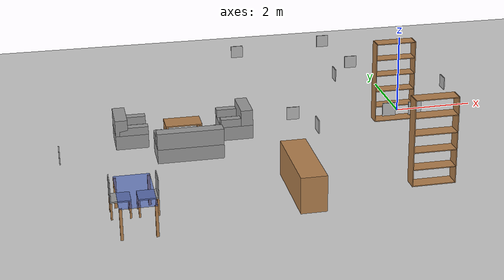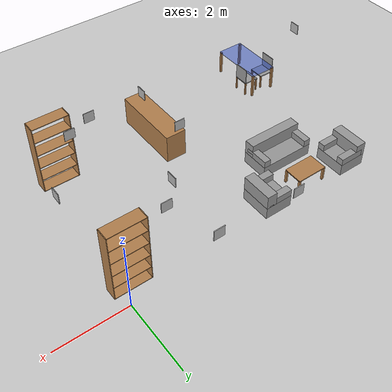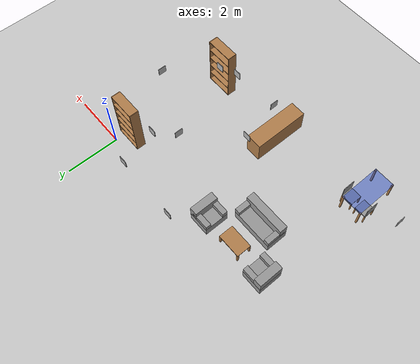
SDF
<sdf version="1.4">
 <world name="GrannyAnnie">
  <model name="ground_plane">
   <static>1</static>
   <link name="link">
    <collision name="collision">
     <geometry><plane><normal>0 0 1</normal><size>100 100</size></plane></geometry>
     <surface><friction><ode><mu>100</mu><mu2>50</mu2></ode></friction></surface>
    </collision>
    <visual name="visual">
     <cast_shadows>0</cast_shadows>
     <geometry><plane><normal>0 0 1</normal><size>100 100</size></plane></geometry>
     <material>
      <script><uri>file://media/materials/scripts/gazebo.material</uri><name>Gazebo/Grey</name></script>
     </material>
    </visual>
    <velocity_decay><linear>0</linear><angular>0</angular></velocity_decay>
   </link>
  </model>
  <model name="tag_0">
   <pose>-8.893000 -4.568000 1.500000 0.000000 0.000000 0.000000</pose>
   <static>true</static>
   <link name="link">
    <collision name="collision">
     <geometry><box><size>0.020000 0.300000 0.3000000</size></box></geometry>
    </collision>
    <visual name="visual">
     <geometry><box><size>0.020000 0.300000 0.3000000</size></box></geometry>
     <material>
      <script><uri>file://tags_material/scripts/tags.material</uri><name>Tag36_11_00000</name></script>
     </material>
    </visual>
   </link>
   <static>0</static>
  </model>
  <model name="tag_2">
   <pose>-3.304000 -4.474000 1.650000 0.000000 0.000000 0.000000</pose>
   <static>true</static>
   <link name="link">
    <collision name="collision">
     <geometry><box><size>0.020000 0.300000 0.3000000</size></box></geometry>
    </collision>
    <visual name="visual">
     <geometry><box><size>0.020000 0.300000 0.3000000</size></box></geometry>
     <material>
      <script><uri>file://tags_material/scripts/tags.material</uri><name>Tag36_11_00002</name></script>
     </material>
    </visual>
   </link>
   <static>0</static>
  </model>
  <model name="tag_3">
   <pose>-2.103000 -1.334000 1.650000 0.000000 0.000000 0.000000</pose>
   <static>true</static>
   <link name="link">
    <collision name="collision">
     <geometry><box><size>0.020000 0.300000 0.3000000</size></box></geometry>
    </collision>
    <visual name="visual">
     <geometry><box><size>0.020000 0.300000 0.3000000</size></box></geometry>
     <material>
      <script><uri>file://tags_material/scripts/tags.material</uri><name>Tag36_11_00003</name></script>
     </material>
    </visual>
   </link>
   <static>0</static>
  </model>
  <model name="tag_4">
   <pose>-4.165000 0.727000 1.700000 0.000000 0.000000 0.000000</pose>
   <static>true</static>
   <link name="link">
    <collision name="collision">
     <geometry><box><size>0.300000 0.020000 0.3000000</size></box></geometry>
    </collision>
    <visual name="visual">
     <geometry><box><size>0.300000 0.020000 0.3000000</size></box></geometry>
     <material>
      <script><uri>file://tags_material/scripts/tags.material</uri><name>Tag36_11_00004</name></script>
     </material>
    </visual>
   </link>
   <static>0</static>
  </model>
  <model name="tag_5">
   <pose>-1.512600 -0.691000 1.700000 0.000000 0.000000 0.000000</pose>
   <static>true</static>
   <link name="link">
    <collision name="collision">
     <geometry><box><size>0.300000 0.020000 0.3000000</size></box></geometry>
    </collision>
    <visual name="visual">
     <geometry><box><size>0.300000 0.020000 0.3000000</size></box></geometry>
     <material>
      <script><uri>file://tags_material/scripts/tags.material</uri><name>Tag36_11_00005</name></script>
     </material>
    </visual>
   </link>
   <static>0</static>
  </model>
  <model name="tag_6">
   <pose>-3.535000 -3.062500 1.400000 0.000000 0.000000 0.000000</pose>
   <static>true</static>
   <link name="link">
    <collision name="collision">
     <geometry><box><size>0.300000 0.020000 0.3000000</size></box></geometry>
    </collision>
    <visual name="visual">
     <geometry><box><size>0.300000 0.020000 0.3000000</size></box></geometry>
     <material>
      <script><uri>file://tags_material/scripts/tags.material</uri><name>Tag36_11_00006</name></script>
     </material>
    </visual>
   </link>
   <static>0</static>
  </model>
  <model name="tag_7">
   <pose>0.296000 -2.487000 1.650000 0.000000 0.000000 0.000000</pose>
   <static>true</static>
   <link name="link">
    <collision name="collision">
     <geometry><box><size>0.020000 0.300000 0.3000000</size></box></geometry>
    </collision>
    <visual name="visual">
     <geometry><box><size>0.020000 0.300000 0.3000000</size></box></geometry>
     <material>
      <script><uri>file://tags_material/scripts/tags.material</uri><name>Tag36_11_00007</name></script>
     </material>
    </visual>
   </link>
   <static>0</static>
  </model>
  <model name="tag_10">
   <pose>-1.614000 -4.29500 1.800000 0.000000 0.000000 0.000000</pose>
   <static>true</static>
   <link name="link">
    <collision name="collision">
     <geometry><box><size>0.300000 0.020000 0.3000000</size></box></geometry>
    </collision>
    <visual name="visual">
     <geometry><box><size>0.300000 0.020000 0.3000000</size></box></geometry>
     <material>
      <script><uri>file://tags_material/scripts/tags.material</uri><name>Tag36_11_00010</name></script>
     </material>
    </visual>
   </link>
   <static>0</static>
  </model>
  <model name="tag_11">
   <pose>-0.940000 -4.096000 1.700000 0.000000 0.000000 0.000000</pose>
   <static>true</static>
   <link name="link">
    <collision name="collision">
     <geometry><box><size>0.300000 0.020000 0.3000000</size></box></geometry>
    </collision>
    <visual name="visual">
     <geometry><box><size>0.300000 0.020000 0.3000000</size></box></geometry>
     <material>
      <script><uri>file://tags_material/scripts/tags.material</uri><name>Tag36_11_00011</name></script>
     </material>
    </visual>
   </link>
   <static>0</static>
  </model>
  <model name="tag_12">
   <pose>-1.894000 0.720000 1.830000 0.000000 0.000000 0.000000</pose>
   <static>true</static>
   <link name="link">
    <collision name="collision">
     <geometry><box><size>0.300000 0.020000 0.3000000</size></box></geometry>
    </collision>
    <visual name="visual">
     <geometry><box><size>0.300000 0.020000 0.3000000</size></box></geometry>
     <material>
      <script><uri>file://tags_material/scripts/tags.material</uri><name>Tag36_11_00012</name></script>
     </material>
    </visual>
   </link>
   <static>0</static>
  </model>
  <model name="mesa_comedor">
   <link name="mesa_link">
    <inertial>
     <pose>1.58603e-17 0 0.513571 0 -0 0</pose>
     <mass>7</mass>
     <inertia>
      <ixx>1.28229</ixx>
      <ixy>0</ixy>
      <ixz>5.70179e-17</ixz>
      <iyy>3.10629</iyy>
      <iyz>0</iyz>
      <izz>3.4192</izz>
     </inertia>
    </inertial>
    <collision name="mesa_link_collision">
     <pose>0 0 0.725 0 -0 0</pose>
     <geometry><box><size>1.6 0.8 0.03</size></box></geometry>
     <surface><friction><ode><mu>1</mu><mu2>1</mu2></ode></friction></surface>
    </collision>
    <collision name="mesa_link_collision_pata_1_link">
     <pose>0.77 0.37 0.355 0 -0 0</pose>
     <geometry><box><size>0.06 0.06 0.71</size></box></geometry>
     <surface><friction><ode><mu>1</mu><mu2>1</mu2></ode></friction></surface>
     <surface><friction><ode><mu>1</mu><mu2>1</mu2></ode></friction></surface>
    </collision>
    <collision name="mesa_link_collision_pata_2_link">
     <pose>0.77 -0.37 0.355 0 -0 0</pose>
     <geometry><box><size>0.06 0.06 0.71</size></box></geometry>
     <surface><friction><ode><mu>1</mu><mu2>1</mu2></ode></friction></surface>
     <surface><friction><ode><mu>1</mu><mu2>1</mu2></ode></friction></surface>
    </collision>
    <collision name="mesa_link_collision_pata_3_link">
     <pose>-0.77 -0.37 0.355 0 -0 0</pose>
     <geometry><box><size>0.06 0.06 0.71</size></box></geometry>
     <surface><friction><ode><mu>1</mu><mu2>1</mu2></ode></friction></surface>
     <surface><friction><ode><mu>1</mu><mu2>1</mu2></ode></friction></surface>
    </collision>
    <collision name="mesa_link_collision_pata_4_link">
     <pose>-0.77 0.37 0.355 0 -0 0</pose>
     <geometry><box><size>0.06 0.06 0.71</size></box></geometry>
     <surface><friction><ode><mu>1</mu><mu2>1</mu2></ode></friction></surface>
     <surface><friction><ode><mu>1</mu><mu2>1</mu2></ode></friction></surface>
    </collision>
    <visual name="mesa_link_visual">
     <pose>0 0 0.725 0 -0 0</pose>
     <geometry><box><size>1.6 0.8 0.03</size></box></geometry>
     <material><script><name>Gazebo/BlueTransparent</name><uri>__default__</uri></script></material>
    </visual>
    <visual name="mesa_link_visual_pata_1_link">
     <pose>0.77 0.37 0.355 0 -0 0</pose>
     <geometry><box><size>0.06 0.06 0.71</size></box></geometry>
     <material><script><name>Gazebo/Wood</name><uri>__default__</uri></script></material>
    </visual>
    <visual name="mesa_link_visual_pata_2_link">
     <pose>0.77 -0.37 0.355 0 -0 0</pose>
     <geometry><box><size>0.06 0.06 0.71</size></box></geometry>
     <material><script><name>Gazebo/Wood</name><uri>__default__</uri></script></material>
    </visual>
    <visual name="mesa_link_visual_pata_3_link">
     <pose>-0.77 -0.37 0.355 0 -0 0</pose>
     <geometry><box><size>0.06 0.06 0.71</size></box></geometry>
     <material><script><name>Gazebo/Wood</name><uri>__default__</uri></script></material>
    </visual>
    <visual name="mesa_link_visual_pata_4_link">
     <pose>-0.77 0.37 0.355 0 -0 0</pose>
     <geometry><box><size>0.06 0.06 0.71</size></box></geometry>
     <material><script><name>Gazebo/Wood</name><uri>__default__</uri></script></material>
    </visual>
    <velocity_decay><linear>0</linear><angular>0</angular></velocity_decay>
    <velocity_decay><linear>0</linear><angular>0</angular></velocity_decay>
    <velocity_decay><linear>0</linear><angular>0</angular></velocity_decay>
    <velocity_decay><linear>0</linear><angular>0</angular></velocity_decay>
    <velocity_decay><linear>0</linear><angular>0</angular></velocity_decay>
    <self_collide>1</self_collide>
   </link>
   <pose>-7.4 -5 0 0 -0 1.57</pose>
   <static>0</static>
  </model>
  <model name="silla_2">
   <link name="silla_link">
    <inertial>
     <pose>0.0215 0 0.353 0 -0 0</pose>
     <mass>2</mass>
     <inertia>
      <ixx>0.674432</ixx>
      <ixy>0</ixy>
      <ixz>-0.012986</ixz>
      <iyy>0.682753</iyy>
      <iyz>0</iyz>
      <izz>0.675561</izz>
     </inertia>
    </inertial>
    <collision name="silla_link_collision">
     <pose>0 0 0.415 0 -0 0</pose>
     <geometry><box><size>0.45 0.45 0.03</size></box></geometry>
     <surface><friction><ode><mu>1</mu><mu2>1</mu2></ode></friction></surface>
    </collision>
    <collision name="silla_link_collision_pata_1_link">
     <pose>0.205 0.205 0.2 0 -0 0</pose>
     <geometry><box><size>0.04 0.04 0.4</size></box></geometry>
     <surface><friction><ode><mu>1</mu><mu2>1</mu2></ode></friction></surface>
     <surface><friction><ode><mu>1</mu><mu2>1</mu2></ode></friction></surface>
    </collision>
    <collision name="silla_link_collision_pata_2_link">
     <pose>0.205 -0.205 0.2 0 -0 0</pose>
     <geometry><box><size>0.04 0.04 0.4</size></box></geometry>
     <surface><friction><ode><mu>1</mu><mu2>1</mu2></ode></friction></surface>
     <surface><friction><ode><mu>1</mu><mu2>1</mu2></ode></friction></surface>
    </collision>
    <collision name="silla_link_collision_pata_3_link">
     <pose>-0.205 -0.205 0.2 0 -0 0</pose>
     <geometry><box><size>0.04 0.04 0.4</size></box></geometry>
     <surface><friction><ode><mu>1</mu><mu2>1</mu2></ode></friction></surface>
     <surface><friction><ode><mu>1</mu><mu2>1</mu2></ode></friction></surface>
    </collision>
    <collision name="silla_link_collision_pata_4_link">
     <pose>-0.205 0.205 0.2 0 -0 0</pose>
     <geometry><box><size>0.04 0.04 0.4</size></box></geometry>
     <surface><friction><ode><mu>1</mu><mu2>1</mu2></ode></friction></surface>
     <surface><friction><ode><mu>1</mu><mu2>1</mu2></ode></friction></surface>
    </collision>
    <collision name="silla_link_collision_respaldo_link">
     <pose>0.215 0 0.655 0 -0 0</pose>
     <geometry><box><size>0.02 0.45 0.45</size></box></geometry>
     <surface><friction><ode><mu>1</mu><mu2>1</mu2></ode></friction></surface>
     <surface><friction><ode><mu>1</mu><mu2>1</mu2></ode></friction></surface>
    </collision>
    <visual name="silla_link_visual">
     <pose>0 0 0.415 0 -0 0</pose>
     <geometry><box><size>0.45 0.45 0.03</size></box></geometry>
     <material><script><name>Gazebo/Grey</name><uri>__default__</uri></script></material>
    </visual>
    <visual name="silla_link_visual_pata_1_link">
     <pose>0.205 0.205 0.2 0 -0 0</pose>
     <geometry><box><size>0.04 0.04 0.4</size></box></geometry>
     <material><script><name>Gazebo/Wood</name><uri>__default__</uri></script></material>
    </visual>
    <visual name="silla_link_visual_pata_2_link">
     <pose>0.205 -0.205 0.2 0 -0 0</pose>
     <geometry><box><size>0.04 0.04 0.4</size></box></geometry>
     <material><script><name>Gazebo/Wood</name><uri>__default__</uri></script></material>
    </visual>
    <visual name="silla_link_visual_pata_3_link">
     <pose>-0.205 -0.205 0.2 0 -0 0</pose>
     <geometry><box><size>0.04 0.04 0.4</size></box></geometry>
     <material><script><name>Gazebo/Wood</name><uri>__default__</uri></script></material>
    </visual>
    <visual name="silla_link_visual_pata_4_link">
     <pose>-0.205 0.205 0.2 0 -0 0</pose>
     <geometry><box><size>0.04 0.04 0.4</size></box></geometry>
     <material><script><name>Gazebo/Wood</name><uri>__default__</uri></script></material>
    </visual>
    <visual name="silla_link_visual_respaldo_link">
     <pose>0.215 0 0.655 0 -0 0</pose>
     <geometry><box><size>0.02 0.45 0.45</size></box></geometry>
     <material><script><name>Gazebo/Grey</name><uri>__default__</uri></script></material>
    </visual>
    <velocity_decay><linear>0</linear><angular>0</angular></velocity_decay>
    <velocity_decay><linear>0</linear><angular>0</angular></velocity_decay>
    <velocity_decay><linear>0</linear><angular>0</angular></velocity_decay>
    <velocity_decay><linear>0</linear><angular>0</angular></velocity_decay>
    <velocity_decay><linear>0</linear><angular>0</angular></velocity_decay>
    <velocity_decay><linear>0</linear><angular>0</angular></velocity_decay>
    <self_collide>1</self_collide>
   </link>
   <pose>-7.1 -4.6 0 0 -0 0</pose>
   <static>0</static>
  </model>
  <model name="silla_4">
   <link name="silla_link">
    <inertial>
     <pose>0.0215 0 0.353 0 -0 0</pose>
     <mass>2</mass>
     <inertia>
      <ixx>0.674432</ixx>
      <ixy>0</ixy>
      <ixz>-0.012986</ixz>
      <iyy>0.682753</iyy>
      <iyz>0</iyz>
      <izz>0.675561</izz>
     </inertia>
    </inertial>
    <collision name="silla_link_collision">
     <pose>0 0 0.415 0 -0 0</pose>
     <geometry><box><size>0.45 0.45 0.03</size></box></geometry>
     <surface><friction><ode><mu>1</mu><mu2>1</mu2></ode></friction></surface>
    </collision>
    <collision name="silla_link_collision_pata_1_link">
     <pose>0.205 0.205 0.2 0 -0 0</pose>
     <geometry><box><size>0.04 0.04 0.4</size></box></geometry>
     <surface><friction><ode><mu>1</mu><mu2>1</mu2></ode></friction></surface>
     <surface><friction><ode><mu>1</mu><mu2>1</mu2></ode></friction></surface>
    </collision>
    <collision name="silla_link_collision_pata_2_link">
     <pose>0.205 -0.205 0.2 0 -0 0</pose>
     <geometry><box><size>0.04 0.04 0.4</size></box></geometry>
     <surface><friction><ode><mu>1</mu><mu2>1</mu2></ode></friction></surface>
     <surface><friction><ode><mu>1</mu><mu2>1</mu2></ode></friction></surface>
    </collision>
    <collision name="silla_link_collision_pata_3_link">
     <pose>-0.205 -0.205 0.2 0 -0 0</pose>
     <geometry><box><size>0.04 0.04 0.4</size></box></geometry>
     <surface><friction><ode><mu>1</mu><mu2>1</mu2></ode></friction></surface>
     <surface><friction><ode><mu>1</mu><mu2>1</mu2></ode></friction></surface>
    </collision>
    <collision name="silla_link_collision_pata_4_link">
     <pose>-0.205 0.205 0.2 0 -0 0</pose>
     <geometry><box><size>0.04 0.04 0.4</size></box></geometry>
     <surface><friction><ode><mu>1</mu><mu2>1</mu2></ode></friction></surface>
     <surface><friction><ode><mu>1</mu><mu2>1</mu2></ode></friction></surface>
    </collision>
    <collision name="silla_link_collision_respaldo_link">
     <pose>0.215 0 0.655 0 -0 0</pose>
     <geometry><box><size>0.02 0.45 0.45</size></box></geometry>
     <surface><friction><ode><mu>1</mu><mu2>1</mu2></ode></friction></surface>
     <surface><friction><ode><mu>1</mu><mu2>1</mu2></ode></friction></surface>
    </collision>
    <visual name="silla_link_visual">
     <pose>0 0 0.415 0 -0 0</pose>
     <geometry><box><size>0.45 0.45 0.03</size></box></geometry>
     <material><script><name>Gazebo/Grey</name><uri>__default__</uri></script></material>
    </visual>
    <visual name="silla_link_visual_pata_1_link">
     <pose>0.205 0.205 0.2 0 -0 0</pose>
     <geometry><box><size>0.04 0.04 0.4</size></box></geometry>
     <material><script><name>Gazebo/Wood</name><uri>__default__</uri></script></material>
    </visual>
    <visual name="silla_link_visual_pata_2_link">
     <pose>0.205 -0.205 0.2 0 -0 0</pose>
     <geometry><box><size>0.04 0.04 0.4</size></box></geometry>
     <material><script><name>Gazebo/Wood</name><uri>__default__</uri></script></material>
    </visual>
    <visual name="silla_link_visual_pata_3_link">
     <pose>-0.205 -0.205 0.2 0 -0 0</pose>
     <geometry><box><size>0.04 0.04 0.4</size></box></geometry>
     <material><script><name>Gazebo/Wood</name><uri>__default__</uri></script></material>
    </visual>
    <visual name="silla_link_visual_pata_4_link">
     <pose>-0.205 0.205 0.2 0 -0 0</pose>
     <geometry><box><size>0.04 0.04 0.4</size></box></geometry>
     <material><script><name>Gazebo/Wood</name><uri>__default__</uri></script></material>
    </visual>
    <visual name="silla_link_visual_respaldo_link">
     <pose>0.215 0 0.655 0 -0 0</pose>
     <geometry><box><size>0.02 0.45 0.45</size></box></geometry>
     <material><script><name>Gazebo/Grey</name><uri>__default__</uri></script></material>
    </visual>
    <velocity_decay><linear>0</linear><angular>0</angular></velocity_decay>
    <velocity_decay><linear>0</linear><angular>0</angular></velocity_decay>
    <velocity_decay><linear>0</linear><angular>0</angular></velocity_decay>
    <velocity_decay><linear>0</linear><angular>0</angular></velocity_decay>
    <velocity_decay><linear>0</linear><angular>0</angular></velocity_decay>
    <velocity_decay><linear>0</linear><angular>0</angular></velocity_decay>
    <self_collide>1</self_collide>
   </link>
   <pose>-7.7 -4.6 0 0 -0 3.14</pose>
   <static>0</static>
  </model>
  <model name="mesa_salon">
   <link name="mesa_link">
    <inertial>
     <pose>1.38778e-17 3.46945e-18 0.3075 0 -0 0</pose>
     <mass>4</mass>
     <inertia>
      <ixx>0.666275</ixx>
      <ixy>1.92593e-34</ixy>
      <ixz>1.70697e-17</ixz>
      <iyy>0.899025</iyy>
      <iyz>4.26742e-18</iyz>
      <izz>0.97285</izz>
     </inertia>
    </inertial>
    <collision name="mesa_link_collision">
     <pose>0 0 0.415 0 -0 0</pose>
     <geometry><box><size>0.9 0.55 0.03</size></box></geometry>
     <surface><friction><ode><mu>1</mu><mu2>1</mu2></ode></friction></surface>
    </collision>
    <collision name="mesa_link_collision_pata_1_link">
     <pose>0.42 0.245 0.2 0 -0 0</pose>
     <geometry><box><size>0.06 0.06 0.4</size></box></geometry>
     <surface><friction><ode><mu>1</mu><mu2>1</mu2></ode></friction></surface>
     <surface><friction><ode><mu>1</mu><mu2>1</mu2></ode></friction></surface>
    </collision>
    <collision name="mesa_link_collision_pata_2_link">
     <pose>0.42 -0.245 0.2 0 -0 0</pose>
     <geometry><box><size>0.06 0.06 0.4</size></box></geometry>
     <surface><friction><ode><mu>1</mu><mu2>1</mu2></ode></friction></surface>
     <surface><friction><ode><mu>1</mu><mu2>1</mu2></ode></friction></surface>
    </collision>
    <collision name="mesa_link_collision_pata_3_link">
     <pose>-0.42 -0.245 0.2 0 -0 0</pose>
     <geometry><box><size>0.06 0.06 0.4</size></box></geometry>
     <surface><friction><ode><mu>1</mu><mu2>1</mu2></ode></friction></surface>
     <surface><friction><ode><mu>1</mu><mu2>1</mu2></ode></friction></surface>
    </collision>
    <collision name="mesa_link_collision_pata_4_link">
     <pose>-0.42 0.245 0.2 0 -0 0</pose>
     <geometry><box><size>0.06 0.06 0.4</size></box></geometry>
     <surface><friction><ode><mu>1</mu><mu2>1</mu2></ode></friction></surface>
     <surface><friction><ode><mu>1</mu><mu2>1</mu2></ode></friction></surface>
    </collision>
    <visual name="mesa_link_visual">
     <pose>0 0 0.415 0 -0 0</pose>
     <geometry><box><size>0.9 0.55 0.03</size></box></geometry>
     <material><script><name>Gazebo/Wood</name><uri>__default__</uri></script></material>
    </visual>
    <visual name="mesa_link_visual_pata_1_link">
     <pose>0.42 0.245 0.2 0 -0 0</pose>
     <geometry><box><size>0.06 0.06 0.4</size></box></geometry>
     <material><script><name>Gazebo/Wood</name><uri>__default__</uri></script></material>
    </visual>
    <visual name="mesa_link_visual_pata_2_link">
     <pose>0.42 -0.245 0.2 0 -0 0</pose>
     <geometry><box><size>0.06 0.06 0.4</size></box></geometry>
     <material><script><name>Gazebo/Wood</name><uri>__default__</uri></script></material>
    </visual>
    <visual name="mesa_link_visual_pata_3_link">
     <pose>-0.42 -0.245 0.2 0 -0 0</pose>
     <geometry><box><size>0.06 0.06 0.4</size></box></geometry>
     <material><script><name>Gazebo/Wood</name><uri>__default__</uri></script></material>
    </visual>
    <visual name="mesa_link_visual_pata_4_link">
     <pose>-0.42 0.245 0.2 0 -0 0</pose>
     <geometry><box><size>0.06 0.06 0.4</size></box></geometry>
     <material><script><name>Gazebo/Wood</name><uri>__default__</uri></script></material>
    </visual>
    <velocity_decay><linear>0</linear><angular>0</angular></velocity_decay>
    <velocity_decay><linear>0</linear><angular>0</angular></velocity_decay>
    <velocity_decay><linear>0</linear><angular>0</angular></velocity_decay>
    <velocity_decay><linear>0</linear><angular>0</angular></velocity_decay>
    <velocity_decay><linear>0</linear><angular>0</angular></velocity_decay>
    <self_collide>1</self_collide>
   </link>
   <pose>-5.8 -0.6 0 0 -0 0</pose>
   <static>0</static>
  </model>
  <model name="sofa_x2_salon">
   <link name="sofa_link">
    <inertial>
     <pose>0 0.0115385 0.257692 0 -0 0</pose>
     <mass>13</mass>
     <inertia>
      <ixx>0.7625</ixx>
      <ixy>0</ixy>
      <ixz>0</ixz>
      <iyy>1.67673</iyy>
      <iyz>-0.0463462</iyz>
      <izz>1.44577</izz>
     </inertia>
    </inertial>
    <collision name="sofa_link_collision">
     <pose>0 0 0.175 0 -0 0</pose>
     <geometry><box><size>1.6 0.8 0.35</size></box></geometry>
     <surface><friction><ode><mu>1</mu><mu2>1</mu2></ode></friction></surface>
    </collision>
    <collision name="sofa_link_collision_brazo_1_link">
     <pose>0.7 -0.05 0.45 0 -0 0</pose>
     <geometry><box><size>0.2 0.7 0.2</size></box></geometry>
     <surface><friction><ode><mu>1</mu><mu2>1</mu2></ode></friction></surface>
     <surface><friction><ode><mu>1</mu><mu2>1</mu2></ode></friction></surface>
    </collision>
    <collision name="sofa_link_collision_brazo_2_link">
     <pose>-0.7 -0.05 0.45 0 -0 0</pose>
     <geometry><box><size>0.2 0.7 0.2</size></box></geometry>
     <surface><friction><ode><mu>1</mu><mu2>1</mu2></ode></friction></surface>
     <surface><friction><ode><mu>1</mu><mu2>1</mu2></ode></friction></surface>
    </collision>
    <collision name="sofa_link_collision_respaldo_link">
     <pose>0 0.25 0.55 0 -0 0</pose>
     <geometry><box><size>1.6 0.3 0.4</size></box></geometry>
     <surface><friction><ode><mu>1</mu><mu2>1</mu2></ode></friction></surface>
     <surface><friction><ode><mu>1</mu><mu2>1</mu2></ode></friction></surface>
    </collision>
    <visual name="sofa_link_visual">
     <pose>0 0 0.175 0 -0 0</pose>
     <geometry><box><size>1.6 0.8 0.35</size></box></geometry>
     <material><script><name>Gazebo/Grey</name><uri>__default__</uri></script></material>
    </visual>
    <visual name="sofa_link_visual_brazo_1_link">
     <pose>0.7 -0.05 0.45 0 -0 0</pose>
     <geometry><box><size>0.2 0.7 0.2</size></box></geometry>
     <material><script><name>Gazebo/Grey</name><uri>__default__</uri></script></material>
    </visual>
    <visual name="sofa_link_visual_brazo_2_link">
     <pose>-0.7 -0.05 0.45 0 -0 0</pose>
     <geometry><box><size>0.2 0.7 0.2</size></box></geometry>
     <material><script><name>Gazebo/Grey</name><uri>__default__</uri></script></material>
    </visual>
    <visual name="sofa_link_visual_respaldo_link">
     <pose>0 0.25 0.55 0 -0 0</pose>
     <geometry><box><size>1.6 0.3 0.4</size></box></geometry>
     <material><script><name>Gazebo/Grey</name><uri>__default__</uri></script></material>
    </visual>
    <velocity_decay><linear>0</linear><angular>0</angular></velocity_decay>
    <velocity_decay><linear>0</linear><angular>0</angular></velocity_decay>
    <velocity_decay><linear>0</linear><angular>0</angular></velocity_decay>
    <velocity_decay><linear>0</linear><angular>0</angular></velocity_decay>
    <self_collide>1</self_collide>
   </link>
   <pose>-5.8 -1.7 0 0 -0 3.14</pose>
   <static>0</static>
  </model>
  <model name="sofa_x1_1_salon">
   <link name="sofa_link">
    <inertial>
     <pose>0 0.01875 0.309375 0 -0 0</pose>
     <mass>8</mass>
     <inertia>
      <ixx>0.705859</ixx>
      <ixy>0</ixy>
      <ixz>0</ixz>
      <iyy>0.886172</iyy>
      <iyz>-0.0385938</iyz>
      <izz>0.709687</izz>
     </inertia>
    </inertial>
    <collision name="sofa_link_collision">
     <pose>0 0 0.175 0 -0 0</pose>
     <geometry><box><size>0.9 0.8 0.35</size></box></geometry>
     <surface><friction><ode><mu>1</mu><mu2>1</mu2></ode></friction></surface>
    </collision>
    <collision name="sofa_link_collision_brazo_1_link">
     <pose>0.35 -0.05 0.45 0 -0 0</pose>
     <geometry><box><size>0.2 0.7 0.2</size></box></geometry>
     <surface><friction><ode><mu>1</mu><mu2>1</mu2></ode></friction></surface>
     <surface><friction><ode><mu>1</mu><mu2>1</mu2></ode></friction></surface>
    </collision>
    <collision name="sofa_link_collision_brazo_2_link">
     <pose>-0.35 -0.05 0.45 0 -0 0</pose>
     <geometry><box><size>0.2 0.7 0.2</size></box></geometry>
     <surface><friction><ode><mu>1</mu><mu2>1</mu2></ode></friction></surface>
     <surface><friction><ode><mu>1</mu><mu2>1</mu2></ode></friction></surface>
    </collision>
    <collision name="sofa_link_collision_respaldo_link">
     <pose>0 0.25 0.55 0 -0 0</pose>
     <geometry><box><size>0.9 0.3 0.4</size></box></geometry>
     <surface><friction><ode><mu>1</mu><mu2>1</mu2></ode></friction></surface>
     <surface><friction><ode><mu>1</mu><mu2>1</mu2></ode></friction></surface>
    </collision>
    <visual name="sofa_link_visual">
     <pose>0 0 0.175 0 -0 0</pose>
     <geometry><box><size>0.9 0.8 0.35</size></box></geometry>
     <material><script><name>Gazebo/Grey</name><uri>__default__</uri></script></material>
    </visual>
    <visual name="sofa_link_visual_brazo_1_link">
     <pose>0.35 -0.05 0.45 0 -0 0</pose>
     <geometry><box><size>0.2 0.7 0.2</size></box></geometry>
     <material><script><name>Gazebo/Grey</name><uri>__default__</uri></script></material>
    </visual>
    <visual name="sofa_link_visual_brazo_2_link">
     <pose>-0.35 -0.05 0.45 0 -0 0</pose>
     <geometry><box><size>0.2 0.7 0.2</size></box></geometry>
     <material><script><name>Gazebo/Grey</name><uri>__default__</uri></script></material>
    </visual>
    <visual name="sofa_link_visual_respaldo_link">
     <pose>0 0.25 0.55 0 -0 0</pose>
     <geometry><box><size>0.9 0.3 0.4</size></box></geometry>
     <material><script><name>Gazebo/Grey</name><uri>__default__</uri></script></material>
    </visual>
    <velocity_decay><linear>0</linear><angular>0</angular></velocity_decay>
    <velocity_decay><linear>0</linear><angular>0</angular></velocity_decay>
    <velocity_decay><linear>0</linear><angular>0</angular></velocity_decay>
    <velocity_decay><linear>0</linear><angular>0</angular></velocity_decay>
    <self_collide>1</self_collide>
   </link>
   <pose>-4.5 -0.6 0 0 0 -1.57</pose>
   <static>0</static>
  </model>
  <model name="sofa_x1_2_salon">
   <link name="sofa_link">
    <inertial>
     <pose>0 0.01875 0.309375 0 -0 0</pose>
     <mass>8</mass>
     <inertia>
      <ixx>0.705859</ixx>
      <ixy>0</ixy>
      <ixz>0</ixz>
      <iyy>0.886172</iyy>
      <iyz>-0.0385938</iyz>
      <izz>0.709687</izz>
     </inertia>
    </inertial>
    <collision name="sofa_link_collision">
     <pose>0 0 0.175 0 -0 0</pose>
     <geometry><box><size>0.9 0.8 0.35</size></box></geometry>
     <surface><friction><ode><mu>1</mu><mu2>1</mu2></ode></friction></surface>
    </collision>
    <collision name="sofa_link_collision_brazo_1_link">
     <pose>0.35 -0.05 0.45 0 -0 0</pose>
     <geometry><box><size>0.2 0.7 0.2</size></box></geometry>
     <surface><friction><ode><mu>1</mu><mu2>1</mu2></ode></friction></surface>
     <surface><friction><ode><mu>1</mu><mu2>1</mu2></ode></friction></surface>
    </collision>
    <collision name="sofa_link_collision_brazo_2_link">
     <pose>-0.35 -0.05 0.45 0 -0 0</pose>
     <geometry><box><size>0.2 0.7 0.2</size></box></geometry>
     <surface><friction><ode><mu>1</mu><mu2>1</mu2></ode></friction></surface>
     <surface><friction><ode><mu>1</mu><mu2>1</mu2></ode></friction></surface>
    </collision>
    <collision name="sofa_link_collision_respaldo_link">
     <pose>0 0.25 0.55 0 -0 0</pose>
     <geometry><box><size>0.9 0.3 0.4</size></box></geometry>
     <surface><friction><ode><mu>1</mu><mu2>1</mu2></ode></friction></surface>
     <surface><friction><ode><mu>1</mu><mu2>1</mu2></ode></friction></surface>
    </collision>
    <visual name="sofa_link_visual">
     <pose>0 0 0.175 0 -0 0</pose>
     <geometry><box><size>0.9 0.8 0.35</size></box></geometry>
     <material><script><name>Gazebo/Grey</name><uri>__default__</uri></script></material>
    </visual>
    <visual name="sofa_link_visual_brazo_1_link">
     <pose>0.35 -0.05 0.45 0 -0 0</pose>
     <geometry><box><size>0.2 0.7 0.2</size></box></geometry>
     <material><script><name>Gazebo/Grey</name><uri>__default__</uri></script></material>
    </visual>
    <visual name="sofa_link_visual_brazo_2_link">
     <pose>-0.35 -0.05 0.45 0 -0 0</pose>
     <geometry><box><size>0.2 0.7 0.2</size></box></geometry>
     <material><script><name>Gazebo/Grey</name><uri>__default__</uri></script></material>
    </visual>
    <visual name="sofa_link_visual_respaldo_link">
     <pose>0 0.25 0.55 0 -0 0</pose>
     <geometry><box><size>0.9 0.3 0.4</size></box></geometry>
     <material><script><name>Gazebo/Grey</name><uri>__default__</uri></script></material>
    </visual>
    <velocity_decay><linear>0</linear><angular>0</angular></velocity_decay>
    <velocity_decay><linear>0</linear><angular>0</angular></velocity_decay>
    <velocity_decay><linear>0</linear><angular>0</angular></velocity_decay>
    <velocity_decay><linear>0</linear><angular>0</angular></velocity_decay>
    <self_collide>1</self_collide>
   </link>
   <pose>-7.1 -0.6 0 0 -0 1.57</pose>
   <static>0</static>
  </model>
  <model name="encimera">
   <link name="encimera_link">
    <inertial>
     <pose>0 0 0.425 0 -0 0</pose>
     <mass>50</mass>
     <inertia><ixx>5</ixx><ixy>0</ixy><ixz>0</ixz><iyy>5</iyy><iyz>0</iyz><izz>5</izz></inertia>
    </inertial>
    <collision name="encimera_link_collision">
     <pose>0 0 0.425 0 -0 0</pose>
     <geometry><box><size>2.1 0.6 0.85</size></box></geometry>
     <surface><friction><ode><mu>1</mu><mu2>1</mu2></ode></friction></surface>
    </collision>
    <visual name="encimera_link_visual">
     <pose>0 0 0.425 0 -0 0</pose>
     <geometry><box><size>2.1 0.6 0.85</size></box></geometry>
     <material><script><name>Gazebo/Wood</name><uri>__default__</uri></script></material>
    </visual>
    <velocity_decay><linear>0</linear><angular>0</angular></velocity_decay>
    <self_collide>1</self_collide>
   </link>
   <pose>-3.6 -4.39 0 0 -0 1.57</pose>
   <static>0</static>
  </model>
  <model name="estanteria_1">
   <link name="estanteria_link">
    <inertial>
     <pose>0 0 1.046 0 -0 0</pose>
     <mass>10</mass>
     <inertia><ixx>3.12544</ixx><ixy>0</ixy><ixz>0</ixz><iyy>4.16584</iyy><iyz>0</iyz><izz>1.1204</izz></inertia>
    </inertial>
    <collision name="estanteria_link_collision">
     <pose>0 0 0.01 0 -0 0</pose>
     <geometry><box><size>1 0.35 0.02</size></box></geometry>
     <surface><friction><ode><mu>1</mu><mu2>1</mu2></ode></friction></surface>
    </collision>
    <collision name="estanteria_link_collision_basal_1_link">
     <pose>0 0 0.41 0 -0 0</pose>
     <geometry><box><size>1 0.35 0.02</size></box></geometry>
     <surface><friction><ode><mu>1</mu><mu2>1</mu2></ode></friction></surface>
     <surface><friction><ode><mu>1</mu><mu2>1</mu2></ode></friction></surface>
    </collision>
    <collision name="estanteria_link_collision_basal_2_link">
     <pose>0 0 0.83 0 -0 0</pose>
     <geometry><box><size>1 0.35 0.02</size></box></geometry>
     <surface><friction><ode><mu>1</mu><mu2>1</mu2></ode></friction></surface>
     <surface><friction><ode><mu>1</mu><mu2>1</mu2></ode></friction></surface>
    </collision>
    <collision name="estanteria_link_collision_basal_3_link">
     <pose>0 0 1.25 0 -0 0</pose>
     <geometry><box><size>1 0.35 0.02</size></box></geometry>
     <surface><friction><ode><mu>1</mu><mu2>1</mu2></ode></friction></surface>
     <surface><friction><ode><mu>1</mu><mu2>1</mu2></ode></friction></surface>
    </collision>
    <collision name="estanteria_link_collision_basal_4_link">
     <pose>0 0 1.67 0 -0 0</pose>
     <geometry><box><size>1 0.35 0.02</size></box></geometry>
     <surface><friction><ode><mu>1</mu><mu2>1</mu2></ode></friction></surface>
     <surface><friction><ode><mu>1</mu><mu2>1</mu2></ode></friction></surface>
    </collision>
    <collision name="estanteria_link_collision_basal_5_link">
     <pose>0 0 2.09 0 -0 0</pose>
     <geometry><box><size>1 0.35 0.02</size></box></geometry>
     <surface><friction><ode><mu>1</mu><mu2>1</mu2></ode></friction></surface>
     <surface><friction><ode><mu>1</mu><mu2>1</mu2></ode></friction></surface>
    </collision>
    <collision name="estanteria_link_collision_lateral_1_link">
     <pose>0.51 0 1.05 0 -0 0</pose>
     <geometry><box><size>0.02 0.35 2.1</size></box></geometry>
     <surface><friction><ode><mu>1</mu><mu2>1</mu2></ode></friction></surface>
     <surface><friction><ode><mu>1</mu><mu2>1</mu2></ode></friction></surface>
    </collision>
    <collision name="estanteria_link_collision_lateral_2_link">
     <pose>-0.51 0 1.05 0 -0 0</pose>
     <geometry><box><size>0.02 0.35 2.1</size></box></geometry>
     <surface><friction><ode><mu>1</mu><mu2>1</mu2></ode></friction></surface>
     <surface><friction><ode><mu>1</mu><mu2>1</mu2></ode></friction></surface>
    </collision>
    <visual name="estanteria_link_visual">
     <pose>0 0 0.01 0 -0 0</pose>
     <geometry><box><size>1 0.35 0.02</size></box></geometry>
     <material><script><name>Gazebo/Wood</name><uri>__default__</uri></script></material>
    </visual>
    <visual name="estanteria_link_visual_basal_1_link">
     <pose>0 0 0.41 0 -0 0</pose>
     <geometry><box><size>1 0.35 0.02</size></box></geometry>
     <material><script><name>Gazebo/Wood</name><uri>__default__</uri></script></material>
    </visual>
    <visual name="estanteria_link_visual_basal_2_link">
     <pose>0 0 0.83 0 -0 0</pose>
     <geometry><box><size>1 0.35 0.02</size></box></geometry>
     <material><script><name>Gazebo/Wood</name><uri>__default__</uri></script></material>
    </visual>
    <visual name="estanteria_link_visual_basal_3_link">
     <pose>0 0 1.25 0 -0 0</pose>
     <geometry><box><size>1 0.35 0.02</size></box></geometry>
     <material><script><name>Gazebo/Wood</name><uri>__default__</uri></script></material>
    </visual>
    <visual name="estanteria_link_visual_basal_4_link">
     <pose>0 0 1.67 0 -0 0</pose>
     <geometry><box><size>1 0.35 0.02</size></box></geometry>
     <material><script><name>Gazebo/Wood</name><uri>__default__</uri></script></material>
    </visual>
    <visual name="estanteria_link_visual_basal_5_link">
     <pose>0 0 2.09 0 -0 0</pose>
     <geometry><box><size>1 0.35 0.02</size></box></geometry>
     <material><script><name>Gazebo/Wood</name><uri>__default__</uri></script></material>
    </visual>
    <visual name="estanteria_link_visual_lateral_1_link">
     <pose>0.51 0 1.05 0 -0 0</pose>
     <geometry><box><size>0.02 0.35 2.1</size></box></geometry>
     <material><script><name>Gazebo/Wood</name><uri>__default__</uri></script></material>
    </visual>
    <visual name="estanteria_link_visual_lateral_2_link">
     <pose>-0.51 0 1.05 0 -0 0</pose>
     <geometry><box><size>0.02 0.35 2.1</size></box></geometry>
     <material><script><name>Gazebo/Wood</name><uri>__default__</uri></script></material>
    </visual>
    <velocity_decay><linear>0</linear><angular>0</angular></velocity_decay>
    <velocity_decay><linear>0</linear><angular>0</angular></velocity_decay>
    <velocity_decay><linear>0</linear><angular>0</angular></velocity_decay>
    <velocity_decay><linear>0</linear><angular>0</angular></velocity_decay>
    <velocity_decay><linear>0</linear><angular>0</angular></velocity_decay>
    <velocity_decay><linear>0</linear><angular>0</angular></velocity_decay>
    <velocity_decay><linear>0</linear><angular>0</angular></velocity_decay>
    <velocity_decay><linear>0</linear><angular>0</angular></velocity_decay>
    <self_collide>1</self_collide>
   </link>
   <pose>-0.3 -0.52 0 0 -0 0</pose>
   <static>0</static>
  </model>
  <model name="estanteria_2">
   <link name="estanteria_link">
    <inertial>
     <pose>0 0 1.046 0 -0 0</pose>
     <mass>10</mass>
     <inertia><ixx>3.12544</ixx><ixy>0</ixy><ixz>0</ixz><iyy>4.16584</iyy><iyz>0</iyz><izz>1.1204</izz></inertia>
    </inertial>
    <collision name="estanteria_link_collision">
     <pose>0 0 0.01 0 -0 0</pose>
     <geometry><box><size>1 0.35 0.02</size></box></geometry>
     <surface><friction><ode><mu>1</mu><mu2>1</mu2></ode></friction></surface>
    </collision>
    <collision name="estanteria_link_collision_basal_1_link">
     <pose>0 0 0.41 0 -0 0</pose>
     <geometry><box><size>1 0.35 0.02</size></box></geometry>
     <surface><friction><ode><mu>1</mu><mu2>1</mu2></ode></friction></surface>
     <surface><friction><ode><mu>1</mu><mu2>1</mu2></ode></friction></surface>
    </collision>
    <collision name="estanteria_link_collision_basal_2_link">
     <pose>0 0 0.83 0 -0 0</pose>
     <geometry><box><size>1 0.35 0.02</size></box></geometry>
     <surface><friction><ode><mu>1</mu><mu2>1</mu2></ode></friction></surface>
     <surface><friction><ode><mu>1</mu><mu2>1</mu2></ode></friction></surface>
    </collision>
    <collision name="estanteria_link_collision_basal_3_link">
     <pose>0 0 1.25 0 -0 0</pose>
     <geometry><box><size>1 0.35 0.02</size></box></geometry>
     <surface><friction><ode><mu>1</mu><mu2>1</mu2></ode></friction></surface>
     <surface><friction><ode><mu>1</mu><mu2>1</mu2></ode></friction></surface>
    </collision>
    <collision name="estanteria_link_collision_basal_4_link">
     <pose>0 0 1.67 0 -0 0</pose>
     <geometry><box><size>1 0.35 0.02</size></box></geometry>
     <surface><friction><ode><mu>1</mu><mu2>1</mu2></ode></friction></surface>
     <surface><friction><ode><mu>1</mu><mu2>1</mu2></ode></friction></surface>
    </collision>
    <collision name="estanteria_link_collision_basal_5_link">
     <pose>0 0 2.09 0 -0 0</pose>
     <geometry><box><size>1 0.35 0.02</size></box></geometry>
     <surface><friction><ode><mu>1</mu><mu2>1</mu2></ode></friction></surface>
     <surface><friction><ode><mu>1</mu><mu2>1</mu2></ode></friction></surface>
    </collision>
    <collision name="estanteria_link_collision_lateral_1_link">
     <pose>0.51 0 1.05 0 -0 0</pose>
     <geometry><box><size>0.02 0.35 2.1</size></box></geometry>
     <surface><friction><ode><mu>1</mu><mu2>1</mu2></ode></friction></surface>
     <surface><friction><ode><mu>1</mu><mu2>1</mu2></ode></friction></surface>
    </collision>
    <collision name="estanteria_link_collision_lateral_2_link">
     <pose>-0.51 0 1.05 0 -0 0</pose>
     <geometry><box><size>0.02 0.35 2.1</size></box></geometry>
     <surface><friction><ode><mu>1</mu><mu2>1</mu2></ode></friction></surface>
     <surface><friction><ode><mu>1</mu><mu2>1</mu2></ode></friction></surface>
    </collision>
    <visual name="estanteria_link_visual">
     <pose>0 0 0.01 0 -0 0</pose>
     <geometry><box><size>1 0.35 0.02</size></box></geometry>
     <material><script><name>Gazebo/Wood</name><uri>__default__</uri></script></material>
    </visual>
    <visual name="estanteria_link_visual_basal_1_link">
     <pose>0 0 0.41 0 -0 0</pose>
     <geometry><box><size>1 0.35 0.02</size></box></geometry>
     <material><script><name>Gazebo/Wood</name><uri>__default__</uri></script></material>
    </visual>
    <visual name="estanteria_link_visual_basal_2_link">
     <pose>0 0 0.83 0 -0 0</pose>
     <geometry><box><size>1 0.35 0.02</size></box></geometry>
     <material><script><name>Gazebo/Wood</name><uri>__default__</uri></script></material>
    </visual>
    <visual name="estanteria_link_visual_basal_3_link">
     <pose>0 0 1.25 0 -0 0</pose>
     <geometry><box><size>1 0.35 0.02</size></box></geometry>
     <material><script><name>Gazebo/Wood</name><uri>__default__</uri></script></material>
    </visual>
    <visual name="estanteria_link_visual_basal_4_link">
     <pose>0 0 1.67 0 -0 0</pose>
     <geometry><box><size>1 0.35 0.02</size></box></geometry>
     <material><script><name>Gazebo/Wood</name><uri>__default__</uri></script></material>
    </visual>
    <visual name="estanteria_link_visual_basal_5_link">
     <pose>0 0 2.09 0 -0 0</pose>
     <geometry><box><size>1 0.35 0.02</size></box></geometry>
     <material><script><name>Gazebo/Wood</name><uri>__default__</uri></script></material>
    </visual>
    <visual name="estanteria_link_visual_lateral_1_link">
     <pose>0.51 0 1.05 0 -0 0</pose>
     <geometry><box><size>0.02 0.35 2.1</size></box></geometry>
     <material><script><name>Gazebo/Wood</name><uri>__default__</uri></script></material>
    </visual>
    <visual name="estanteria_link_visual_lateral_2_link">
     <pose>-0.51 0 1.05 0 -0 0</pose>
     <geometry><box><size>0.02 0.35 2.1</size></box></geometry>
     <material><script><name>Gazebo/Wood</name><uri>__default__</uri></script></material>
    </visual>
    <velocity_decay><linear>0</linear><angular>0</angular></velocity_decay>
    <velocity_decay><linear>0</linear><angular>0</angular></velocity_decay>
    <velocity_decay><linear>0</linear><angular>0</angular></velocity_decay>
    <velocity_decay><linear>0</linear><angular>0</angular></velocity_decay>
    <velocity_decay><linear>0</linear><angular>0</angular></velocity_decay>
    <velocity_decay><linear>0</linear><angular>0</angular></velocity_decay>
    <velocity_decay><linear>0</linear><angular>0</angular></velocity_decay>
    <velocity_decay><linear>0</linear><angular>0</angular></velocity_decay>
    <self_collide>1</self_collide>
   </link>
   <pose>-0.6 -4.5 0 0 -0 0</pose>
   <static>0</static>
  </model>
 </world>
</sdf>
